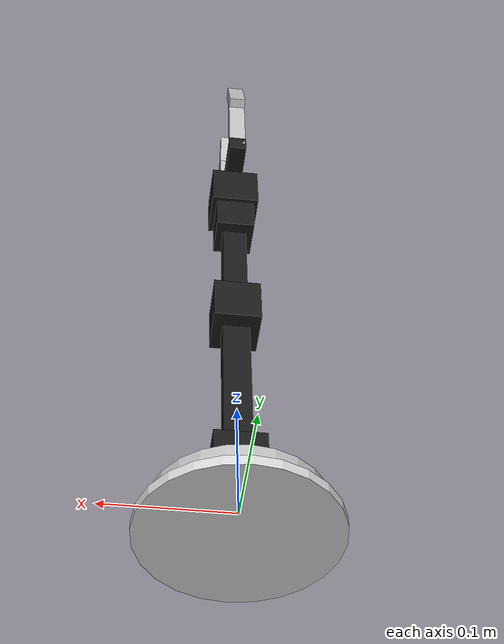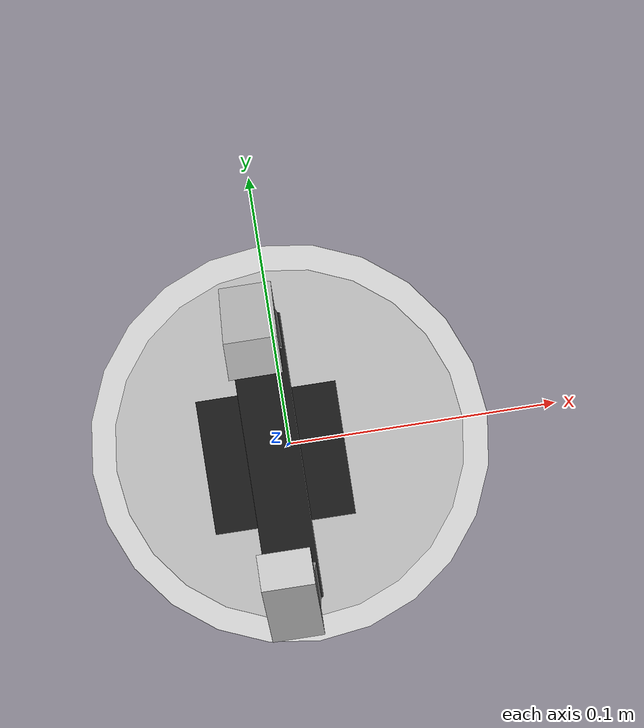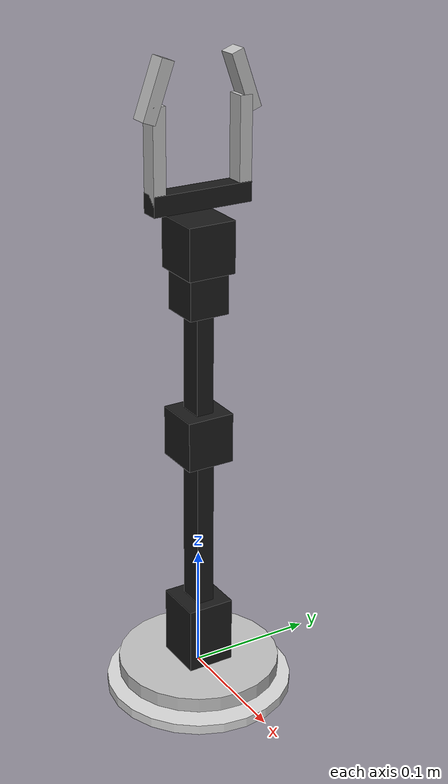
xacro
<?xml version="1.0"?>
<robot xmlns:xacro="http://www.ros.org/wiki/xacro" name="lerobot">
    <xacro:arg name="initial_positions_file" default="initial_positions.yaml" />

    <!-- Import lerobot urdf file -->
    <xacro:include filename="$(find lerobot_description)/urdf/robot.urdf" />

    <!-- Import control_xacro -->
    <xacro:include filename="lerobot.ros2_control.xacro" />

    <xacro:lerobot_ros2_control name="FakeSystem" initial_positions_file="$(arg initial_positions_file)"/>

</robot>

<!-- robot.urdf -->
<robot name="robot_4axis">

  <!-- 材质定义 -->
  <material name="dark_gray"><color rgba="0.2 0.2 0.2 1.0"/></material>
  <material name="silver"><color rgba="0.75 0.75 0.75 1.0"/></material>
  <material name="black"><color rgba="0.1 0.1 0.1 1.0"/></material>
  <material name="light_gray"><color rgba="0.85 0.85 0.85 1.0"/></material>

  <!-- 底座：两层圆盘转台      -->
  <link name="base_link">
    <!-- 下层圆盘（透明亚克力底板） -->
    <visual>
      <geometry>
        <cylinder radius="0.075" length="0.008"/>
      </geometry>
      <origin xyz="0 0 -0.016"/>
      <material name="light_gray"/>
    </visual>
    <collision>
      <geometry>
        <cylinder radius="0.075" length="0.008"/>
      </geometry>
      <origin xyz="0 0 -0.016"/>
    </collision>

    <!-- 上层圆盘（金属转台） -->
    <visual>
      <geometry>
        <cylinder radius="0.065" length="0.012"/>
      </geometry>
      <origin xyz="0 0 0"/>
      <material name="silver"/>
    </visual>
    <collision>
      <geometry>
        <cylinder radius="0.065" length="0.012"/>
      </geometry>
      <origin xyz="0 0 0"/>
    </collision>
  </link>

  <!-- joint1：底座绕Z轴旋转（水平回转），范围±180° -->
  <joint name="joint1" type="revolute">
    <parent link="base_link"/>
    <child link="shoulder_link"/>
    <origin xyz="0 0 0.006"/>
    <axis xyz="0 0 1"/>
    <limit lower="-3.1416" upper="3.1416" effort="15" velocity="1.0"/>
  </joint>

  <!-- 肩部：关节2的舵机座     -->
  <link name="shoulder_link">
    <!-- 舵机壳体 -->
    <visual>
      <geometry>
        <box size="0.04 0.038 0.055"/>
      </geometry>
      <origin xyz="0 0 0.027"/>
      <material name="black"/>
    </visual>
    <collision>
      <geometry>
        <box size="0.04 0.038 0.055"/>
      </geometry>
      <origin xyz="0 0 0.027"/>
    </collision>
  </link>

  <!-- joint2：大臂俯仰（绕Y轴），范围-90°~+90° -->
  <joint name="joint2" type="revolute">
    <parent link="shoulder_link"/>
    <child link="upper_arm_link"/>
    <origin xyz="0 0 0.054"/>
    <axis xyz="0 1 0"/>
    <limit lower="-1.5708" upper="1.5708" effort="15" velocity="1.0"/>
  </joint>

  <!-- 大臂：较长的黑色连杆     -->
  <link name="upper_arm_link">
    <!-- 大臂主杆 -->
    <visual>
      <geometry>
        <box size="0.022 0.014 0.130"/>
      </geometry>
      <origin xyz="0 0 0.065"/>
      <material name="black"/>
    </visual>
    <collision>
      <geometry>
        <box size="0.022 0.014 0.130"/>
      </geometry>
      <origin xyz="0 0 0.065"/>
    </collision>

    <!-- 中段舵机（关节3的驱动舵机，位于大臂上端） -->
    <visual>
      <geometry>
        <box size="0.038 0.038 0.040"/>
      </geometry>
      <origin xyz="0 0 0.145"/>
      <material name="black"/>
    </visual>
    <collision>
      <geometry>
        <box size="0.038 0.038 0.040"/>
      </geometry>
      <origin xyz="0 0 0.145"/>
    </collision>
  </link>

  <!-- joint3：前臂俯仰（绕Y轴），范围-90°~+90° -->
  <joint name="joint3" type="revolute">
    <parent link="upper_arm_link"/>
    <child link="forearm_link"/>
    <origin xyz="0 0 0.165"/>
    <axis xyz="0 1 0"/>
    <limit lower="-1.5708" upper="1.5708" effort="10" velocity="1.0"/>
  </joint>

  <!-- 前臂：较短的黑色连杆     -->
  <link name="forearm_link">
    <!-- 前臂主杆 -->
    <visual>
      <geometry>
        <box size="0.020 0.014 0.090"/>
      </geometry>
      <origin xyz="0 0 0.045"/>
      <material name="black"/>
    </visual>
    <collision>
      <geometry>
        <box size="0.020 0.014 0.090"/>
      </geometry>
      <origin xyz="0 0 0.045"/>
    </collision>

    <!-- 末端关节4舵机座 -->
    <visual>
      <geometry>
        <box size="0.032 0.032 0.032"/>
      </geometry>
      <origin xyz="0 0 0.096"/>
      <material name="black"/>
    </visual>
    <collision>
      <geometry>
        <box size="0.032 0.032 0.032"/>
      </geometry>
      <origin xyz="0 0 0.096"/>
    </collision>
  </link>

  <!-- joint4：前臂末端到夹爪底座 -->
<joint name="joint4" type="fixed">
  <parent link="forearm_link"/>
  <child link="gripper_base_link"/>
  <origin xyz="0 0 0.112" rpy="0 -1.5708 0"/>
</joint>

<link name="gripper_base_link">
  <visual>
    <geometry><box size="0.040 0.038 0.040"/></geometry>
    <origin xyz="0.020 0 0"/>
    <material name="black"/>
  </visual>
  <collision>
    <geometry><box size="0.040 0.038 0.040"/></geometry>
    <origin xyz="0.020 0 0"/>
  </collision>
  <visual>
    <geometry><box size="0.015 0.080 0.015"/></geometry>
    <origin xyz="0.055 0 0"/>
    <material name="black"/>
  </visual>
  <collision>
    <geometry><box size="0.015 0.080 0.015"/></geometry>
    <origin xyz="0.055 0 0"/>
  </collision>
</link>

<!-- 左指爪（主动）：安装在Y负侧，绕Z轴向Y正方向夹合 -->
<link name="gripper_left_finger_link">
  <visual>
    <geometry><box size="0.070 0.010 0.014"/></geometry>
    <origin xyz="0.035 0 0"/>
    <material name="silver"/>
  </visual>
  <collision>
    <geometry><box size="0.070 0.010 0.014"/></geometry>
    <origin xyz="0.035 0 0"/>
  </collision>
  <visual>
    <geometry><box size="0.045 0.010 0.014"/></geometry>
    <origin xyz="0.080 0 0" rpy="0 0 0.35"/>
    <material name="silver"/>
  </visual>
  <collision>
    <geometry><box size="0.045 0.010 0.014"/></geometry>
    <origin xyz="0.080 0 0" rpy="0 0 0.35"/>
  </collision>
</link>

<!-- 左指：位于Y负侧，绕Z轴旋转，张开为负（远离中心），夹合为正（靠近中心） -->
<joint name="gripper_left_finger_joint" type="revolute">
  <parent link="gripper_base_link"/>
  <child link="gripper_left_finger_link"/>
  <origin xyz="0.055 -0.035 0" rpy="0 0 0"/>
  <axis xyz="0 0 1"/>
  <limit lower="-0.6" upper="0.0" effort="10" velocity="1.0"/>
</joint>

<!-- 右指爪（从动，与左指镜像对称） -->
<link name="gripper_right_finger_link">
  <visual>
    <geometry><box size="0.070 0.010 0.014"/></geometry>
    <origin xyz="0.035 0 0"/>
    <material name="silver"/>
  </visual>
  <collision>
    <geometry><box size="0.070 0.010 0.014"/></geometry>
    <origin xyz="0.035 0 0"/>
  </collision>
  <visual>
    <geometry><box size="0.045 0.010 0.014"/></geometry>
    <origin xyz="0.080 0 0" rpy="0 0 -0.35"/>
    <material name="silver"/>
  </visual>
  <collision>
    <geometry><box size="0.045 0.010 0.014"/></geometry>
    <origin xyz="0.080 0 0" rpy="0 0 -0.35"/>
  </collision>
</link>

<!-- 右指：位于Y正侧，绕Z轴旋转，mimic乘数-1实现对称夹合 -->
<joint name="gripper_right_finger_joint" type="revolute">
  <parent link="gripper_base_link"/>
  <child link="gripper_right_finger_link"/>
  <origin xyz="0.055 0.035 0" rpy="0 0 0"/>
  <axis xyz="0 0 1"/>
  <mimic joint="gripper_left_finger_joint" multiplier="-1.0" offset="0.0"/>
  <limit lower="0.0" upper="0.6" effort="10" velocity="1.0"/>
</joint>

<!-- TCP工具点 -->
<joint name="gripper_tcp_joint" type="fixed">
  <parent link="gripper_base_link"/>
  <child link="tcp_link"/>
  <origin xyz="0.110 0 0"/>
</joint>

<link name="tcp_link"/>

</robot>
